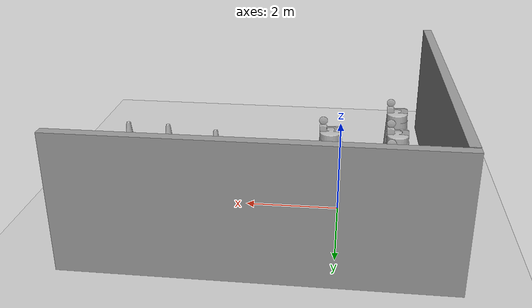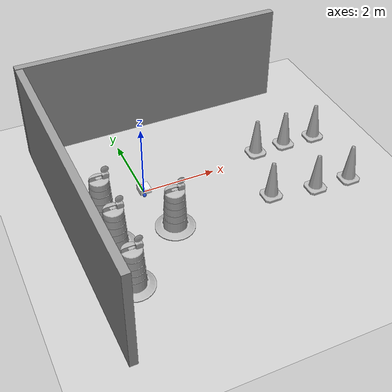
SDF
<sdf version="1.7">
 <world name="default">
  <light name="sun" type="directional">
   <pose>0 0 10 0 -0 0</pose>
   <diffuse>0.8 0.8 0.8 1</diffuse>
   <specular>0.2 0.2 0.2 1</specular>
   <attenuation>
    <range>1000</range>
    <constant>0.9</constant>
    <linear>0.01</linear>
    <quadratic>0.001</quadratic>
   </attenuation>
   <direction>-0.5 0.1 -0.9</direction>
   <spot><inner_angle>0</inner_angle><outer_angle>0</outer_angle><falloff>0</falloff></spot>
  </light>
  <model name="ground_plane">
   <static>1</static>
   <link name="link">
    <collision name="collision">
     <geometry><plane><normal>0 0 1</normal><size>100 100</size></plane></geometry>
     <surface><friction><ode><mu>100</mu><mu2>50</mu2></ode></friction></surface>
    </collision>
    <visual name="visual">
     <cast_shadows>0</cast_shadows>
     <geometry><plane><normal>0 0 1</normal><size>100 100</size></plane></geometry>
     <material>
      <script><uri>file://media/materials/scripts/gazebo.material</uri><name>Gazebo/Grey</name></script>
     </material>
    </visual>
   </link>
  </model>
  <gravity>0 0 -9.8</gravity>
  <magnetic_field>6e-06 2.3e-05 -4.2e-05</magnetic_field>
  <atmosphere type="adiabatic"/>
  <physics type="ode">
   <max_step_size>0.001</max_step_size>
   <real_time_factor>1</real_time_factor>
   <real_time_update_rate>1000</real_time_update_rate>
  </physics>
  <scene><ambient>0.4 0.4 0.4 1</ambient><background>0.7 0.7 0.7 1</background><shadows>1</shadows></scene>
  <audio><device>default</device></audio>
  <spherical_coordinates>
   <surface_model>EARTH_WGS84</surface_model>
   <latitude_deg>0</latitude_deg>
   <longitude_deg>0</longitude_deg>
   <elevation>0</elevation>
   <heading_deg>0</heading_deg>
  </spherical_coordinates>
  <model name="Construction Barrel">
   <link name="link">
    <inertial>
     <pose>0 0 0.4 0 -0 0</pose>
     <mass>500</mass>
     <inertia><ixx>51.2096</ixx><iyy>51.2096</iyy><izz>25</izz><ixy>0</ixy><ixz>0</ixz><iyz>0</iyz></inertia>
    </inertial>
    <collision name="collision">
     <geometry><mesh><uri>model://construction_barrel/meshes/construction_barrel.dae</uri></mesh></geometry>
    </collision>
    <visual name="visual">
     <geometry><mesh><uri>model://construction_barrel/meshes/construction_barrel.dae</uri></mesh></geometry>
    </visual>
   </link>
   <pose>-1.34996 -2.83934 -0 0 -0 -4.4e-05</pose>
  </model>
  <model name="Construction Cone">
   <link name="link">
    <collision name="collision">
     <geometry>
      <mesh><scale>10 10 10</scale><uri>model://construction_cone/meshes/construction_cone.dae</uri></mesh>
     </geometry>
    </collision>
    <visual name="visual">
     <geometry>
      <mesh><scale>10 10 10</scale><uri>model://construction_cone/meshes/construction_cone.dae</uri></mesh>
     </geometry>
    </visual>
    <inertial>
     <inertia><ixx>1</ixx><ixy>0</ixy><ixz>0</ixz><iyy>1</iyy><iyz>0</iyz><izz>1</izz></inertia>
     <mass>1</mass>
    </inertial>
   </link>
   <pose>3.4396 0.227736 -0 0 -0 0</pose>
  </model>
  <model name="Construction Cone_0">
   <link name="link">
    <collision name="collision">
     <geometry>
      <mesh><scale>10 10 10</scale><uri>model://construction_cone/meshes/construction_cone.dae</uri></mesh>
     </geometry>
    </collision>
    <visual name="visual">
     <geometry>
      <mesh><scale>10 10 10</scale><uri>model://construction_cone/meshes/construction_cone.dae</uri></mesh>
     </geometry>
    </visual>
    <inertial>
     <inertia><ixx>1</ixx><ixy>0</ixy><ixz>0</ixz><iyy>1</iyy><iyz>0</iyz><izz>1</izz></inertia>
     <mass>1</mass>
    </inertial>
   </link>
   <pose>2.96543 -1.50069 -1e-05 -1e-06 0 0</pose>
  </model>
  <model name="Construction Barrel_0">
   <link name="link">
    <inertial>
     <pose>0 0 0.4 0 -0 0</pose>
     <mass>500</mass>
     <inertia><ixx>51.2096</ixx><iyy>51.2096</iyy><izz>25</izz><ixy>0</ixy><ixz>0</ixz><iyz>0</iyz></inertia>
    </inertial>
    <collision name="collision">
     <geometry><mesh><uri>model://construction_barrel/meshes/construction_barrel.dae</uri></mesh></geometry>
    </collision>
    <visual name="visual">
     <geometry><mesh><uri>model://construction_barrel/meshes/construction_barrel.dae</uri></mesh></geometry>
    </visual>
   </link>
   <pose>-1.26546 -0.357634 1e-06 3e-06 2e-06 -3.9e-05</pose>
  </model>
  <model name="Construction Cone_1">
   <link name="link">
    <collision name="collision">
     <geometry>
      <mesh><scale>10 10 10</scale><uri>model://construction_cone/meshes/construction_cone.dae</uri></mesh>
     </geometry>
    </collision>
    <visual name="visual">
     <geometry>
      <mesh><scale>10 10 10</scale><uri>model://construction_cone/meshes/construction_cone.dae</uri></mesh>
     </geometry>
    </visual>
    <inertial>
     <inertia><ixx>1</ixx><ixy>0</ixy><ixz>0</ixz><iyy>1</iyy><iyz>0</iyz><izz>1</izz></inertia>
     <mass>1</mass>
    </inertial>
   </link>
   <pose>4.3348 0.237436 -0 0 -0 0</pose>
  </model>
  <model name="Construction Cone_2">
   <link name="link">
    <collision name="collision">
     <geometry>
      <mesh><scale>10 10 10</scale><uri>model://construction_cone/meshes/construction_cone.dae</uri></mesh>
     </geometry>
    </collision>
    <visual name="visual">
     <geometry>
      <mesh><scale>10 10 10</scale><uri>model://construction_cone/meshes/construction_cone.dae</uri></mesh>
     </geometry>
    </visual>
    <inertial>
     <inertia><ixx>1</ixx><ixy>0</ixy><ixz>0</ixz><iyy>1</iyy><iyz>0</iyz><izz>1</izz></inertia>
     <mass>1</mass>
    </inertial>
   </link>
   <pose>5.27769 0.20119 -9e-06 -1e-06 -0 -0</pose>
  </model>
  <model name="Construction Cone_3">
   <link name="link">
    <collision name="collision">
     <geometry>
      <mesh><scale>10 10 10</scale><uri>model://construction_cone/meshes/construction_cone.dae</uri></mesh>
     </geometry>
    </collision>
    <visual name="visual">
     <geometry>
      <mesh><scale>10 10 10</scale><uri>model://construction_cone/meshes/construction_cone.dae</uri></mesh>
     </geometry>
    </visual>
    <inertial>
     <inertia><ixx>1</ixx><ixy>0</ixy><ixz>0</ixz><iyy>1</iyy><iyz>0</iyz><izz>1</izz></inertia>
     <mass>1</mass>
    </inertial>
   </link>
   <pose>4.17489 -1.71491 -8e-06 1e-06 -0 0</pose>
  </model>
  <model name="Construction Cone_4">
   <link name="link">
    <collision name="collision">
     <geometry>
      <mesh><scale>10 10 10</scale><uri>model://construction_cone/meshes/construction_cone.dae</uri></mesh>
     </geometry>
    </collision>
    <visual name="visual">
     <geometry>
      <mesh><scale>10 10 10</scale><uri>model://construction_cone/meshes/construction_cone.dae</uri></mesh>
     </geometry>
    </visual>
    <inertial>
     <inertia><ixx>1</ixx><ixy>0</ixy><ixz>0</ixz><iyy>1</iyy><iyz>0</iyz><izz>1</izz></inertia>
     <mass>1</mass>
    </inertial>
   </link>
   <pose>5.1745 -1.76103 -0 0 -0 0</pose>
  </model>
  <model name="Construction Barrel_2">
   <link name="link">
    <inertial>
     <pose>0 0 0.4 0 -0 0</pose>
     <mass>500</mass>
     <inertia><ixx>51.2096</ixx><iyy>51.2096</iyy><izz>25</izz><ixy>0</ixy><ixz>0</ixz><iyz>0</iyz></inertia>
    </inertial>
    <collision name="collision">
     <geometry><mesh><uri>model://construction_barrel/meshes/construction_barrel.dae</uri></mesh></geometry>
    </collision>
    <visual name="visual">
     <geometry><mesh><uri>model://construction_barrel/meshes/construction_barrel.dae</uri></mesh></geometry>
    </visual>
   </link>
   <pose>-1.30102 -1.48456 -0 0 -0 -0.003691</pose>
  </model>
  <model name="Construction Barrel_3">
   <link name="link">
    <inertial>
     <pose>0 0 0.4 0 -0 0</pose>
     <mass>500</mass>
     <inertia><ixx>51.2096</ixx><iyy>51.2096</iyy><izz>25</izz><ixy>0</ixy><ixz>0</ixz><iyz>0</iyz></inertia>
    </inertial>
    <collision name="collision">
     <geometry><mesh><uri>model://construction_barrel/meshes/construction_barrel.dae</uri></mesh></geometry>
    </collision>
    <visual name="visual">
     <geometry><mesh><uri>model://construction_barrel/meshes/construction_barrel.dae</uri></mesh></geometry>
    </visual>
   </link>
   <pose>0.247095 -1.4952 1e-06 3e-06 2e-06 -4e-05</pose>
  </model>
  <model name="my_bot">
   <link name="base_link">
    <inertial>
     <pose>0.055714 0 0.078571 0 -0 0</pose>
     <mass>0.7</mass>
     <inertia>
      <ixx>0.0064169</ixx>
      <ixy>0</ixy>
      <ixz>0.00118929</ixz>
      <iyy>0.00745405</iyy>
      <iyz>0</iyz>
      <izz>0.00876214</izz>
     </inertia>
    </inertial>
    <collision name="base_link_fixed_joint_lump__chassis_collision">
     <pose>0.05 0 0.075 0 -0 0</pose>
     <geometry><box><size>0.3 0.3 0.15</size></box></geometry>
    </collision>
    <collision name="base_link_fixed_joint_lump__caster_wheel_collision_1">
     <pose>0.14 0 0 0 -0 0</pose>
     <geometry><sphere><radius>0.05</radius></sphere></geometry>
     <surface><friction><ode><mu>0.1</mu><mu2>0.1</mu2></ode></friction></surface>
    </collision>
    <collision name="base_link_fixed_joint_lump__laser_frame_collision_2">
     <pose>0 0 0.175 0 -0 0</pose>
     <geometry><cylinder><length>0.04</length><radius>0.05</radius></cylinder></geometry>
    </collision>
    <visual name="base_link_fixed_joint_lump__chassis_visual">
     <pose>0.05 0 0.075 0 -0 0</pose>
     <geometry><box><size>0.3 0.3 0.15</size></box></geometry>
     <material>
      <script><name>Gazebo/White</name><uri>file://media/materials/scripts/gazebo.material</uri></script>
     </material>
    </visual>
    <visual name="base_link_fixed_joint_lump__camera_link_visual_1">
     <pose>0.205 0 0.08 0 -0 0</pose>
     <geometry><box><size>0.01 0.03 0.03</size></box></geometry>
     <material>
      <script><name>Gazebo/Red</name><uri>file://media/materials/scripts/gazebo.material</uri></script>
     </material>
    </visual>
    <visual name="base_link_fixed_joint_lump__caster_wheel_visual_2">
     <pose>0.14 0 0 0 -0 0</pose>
     <geometry><sphere><radius>0.05</radius></sphere></geometry>
     <material>
      <script><name>Gazebo/Black</name><uri>file://media/materials/scripts/gazebo.material</uri></script>
     </material>
    </visual>
    <visual name="base_link_fixed_joint_lump__laser_frame_visual_3">
     <pose>0 0 0.175 0 -0 0</pose>
     <geometry><cylinder><length>0.04</length><radius>0.05</radius></cylinder></geometry>
     <material>
      <script><name>Gazebo/Red</name><uri>file://media/materials/scripts/gazebo.material</uri></script>
     </material>
    </visual>
    <sensor name="camera" type="depth">
     <visualize>1</visualize>
     <update_rate>10</update_rate>
     <camera>
      <horizontal_fov>1.089</horizontal_fov>
      <image><format>B8G8R8</format><width>640</width><height>480</height></image>
      <clip><near>0.05</near><far>8</far></clip>
     </camera>
     <plugin name="camera_controller" filename="libgazebo_ros_camera.so">
      <frame_name>camera_link_optical</frame_name>
      <min_delth>0.1</min_delth>
      <max_depth>100.0</max_depth>
     </plugin>
     <pose>0.205 0 0.08 0 -0 0</pose>
    </sensor>
    <sensor name="laser" type="ray">
     <visualize>1</visualize>
     <update_rate>10</update_rate>
     <ray>
      <scan>
       <horizontal>
        <samples>360</samples>
        <min_angle>-3.14</min_angle>
        <max_angle>3.14</max_angle>
        <resolution>1</resolution>
       </horizontal>
       <vertical><samples>1</samples><min_angle>0</min_angle><max_angle>0</max_angle></vertical>
      </scan>
      <range><min>0.3</min><max>12</max></range>
     </ray>
     <plugin name="laser_controller" filename="libgazebo_ros_ray_sensor.so">
      <ros><argument>~/out:=scan</argument></ros>
      <output_type>sensor_msgs/LaserScan</output_type>
      <frame_name>laser_frame</frame_name>
     </plugin>
     <pose>0 0 0.175 0 -0 0</pose>
    </sensor>
   </link>
   <joint name="left_wheel_joint" type="revolute">
    <pose relative_to="base_link">0 0.175 0 -1.5708 0 0</pose>
    <parent>base_link</parent>
    <child>left_wheel</child>
    <axis>
     <xyz>0 0 1</xyz>
     <limit><lower>-1e+16</lower><upper>1e+16</upper></limit>
     <dynamics><spring_reference>0</spring_reference><spring_stiffness>0</spring_stiffness></dynamics>
    </axis>
   </joint>
   <link name="left_wheel">
    <pose relative_to="left_wheel_joint">0 0 0 0 -0 0</pose>
    <inertial>
     <mass>0.1</mass>
     <inertia>
      <ixx>7.58333e-05</ixx>
      <ixy>0</ixy>
      <ixz>0</ixz>
      <iyy>7.58333e-05</iyy>
      <iyz>0</iyz>
      <izz>0.000125</izz>
     </inertia>
    </inertial>
    <collision name="left_wheel_collision">
     <geometry><cylinder><length>0.04</length><radius>0.05</radius></cylinder></geometry>
    </collision>
    <visual name="left_wheel_visual">
     <geometry><sphere><radius>0.05</radius></sphere></geometry>
     <material>
      <script><name>Gazebo/Blue</name><uri>file://media/materials/scripts/gazebo.material</uri></script>
     </material>
    </visual>
   </link>
   <joint name="right_wheel_joint" type="revolute">
    <pose relative_to="base_link">0 -0.175 0 1.5708 -0 0</pose>
    <parent>base_link</parent>
    <child>right_wheel</child>
    <axis>
     <xyz>0 0 -1</xyz>
     <limit><lower>-1e+16</lower><upper>1e+16</upper></limit>
     <dynamics><spring_reference>0</spring_reference><spring_stiffness>0</spring_stiffness></dynamics>
    </axis>
   </joint>
   <link name="right_wheel">
    <pose relative_to="right_wheel_joint">0 0 0 0 -0 0</pose>
    <inertial>
     <mass>0.1</mass>
     <inertia>
      <ixx>7.58333e-05</ixx>
      <ixy>0</ixy>
      <ixz>0</ixz>
      <iyy>7.58333e-05</iyy>
      <iyz>0</iyz>
      <izz>0.000125</izz>
     </inertia>
    </inertial>
    <collision name="right_wheel_collision">
     <geometry><cylinder><length>0.04</length><radius>0.05</radius></cylinder></geometry>
    </collision>
    <visual name="right_wheel_visual">
     <geometry><sphere><radius>0.05</radius></sphere></geometry>
     <material>
      <script><name>Gazebo/Blue</name><uri>file://media/materials/scripts/gazebo.material</uri></script>
     </material>
    </visual>
   </link>
   <static>0</static>
   <plugin name="gazebo_ros2_control" filename="libgazebo_ros2_control.so">
    <parameters>/home/ruan/dev_ws/install/my_bot/share/my_bot/config/my_controllers.yaml</parameters>
   </plugin>
   <pose>-0.046975 8.8e-05 0.050001 0 4e-06 0.002521</pose>
  </model>
  <model name="grey_wall">
   <static>1</static>
   <link name="link">
    <pose>0 0 1.4 0 -0 0</pose>
    <collision name="collision"><geometry><box><size>7.5 0.2 2.8</size></box></geometry></collision>
    <visual name="visual">
     <cast_shadows>0</cast_shadows>
     <geometry><box><size>7.5 0.2 2.8</size></box></geometry>
     <material>
      <script>
       <uri>model://grey_wall/materials/scripts</uri>
       <uri>model://grey_wall/materials/textures</uri>
       <name>vrc/grey_wall</name>
      </script>
     </material>
    </visual>
   </link>
   <pose>-2.16933 -1.06496 0 0 -0 1.5853</pose>
  </model>
  <model name="grey_wall_clone">
   <static>1</static>
   <link name="link">
    <pose>0 0 1.4 0 -0 0</pose>
    <collision name="collision"><geometry><box><size>7.5 0.2 2.8</size></box></geometry></collision>
    <visual name="visual">
     <cast_shadows>0</cast_shadows>
     <geometry><box><size>7.5 0.2 2.8</size></box></geometry>
     <material>
      <script>
       <uri>model://grey_wall/materials/scripts</uri>
       <uri>model://grey_wall/materials/textures</uri>
       <name>vrc/grey_wall</name>
      </script>
     </material>
    </visual>
   </link>
   <pose>1.43035 2.80915 0 0 -0 0</pose>
  </model>
 </world>
</sdf>
